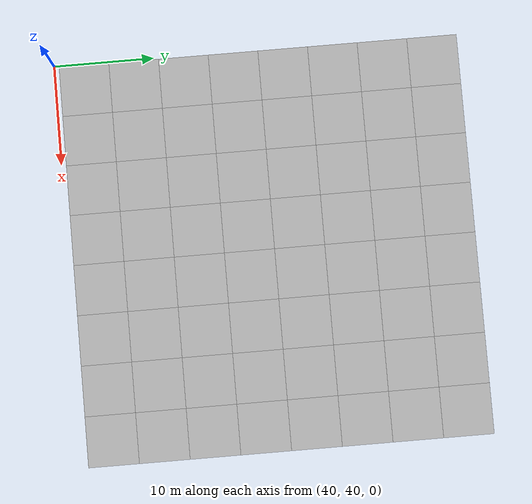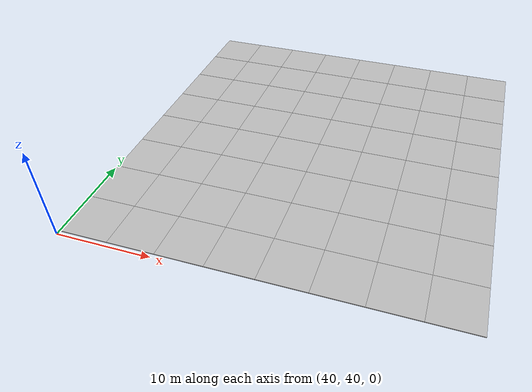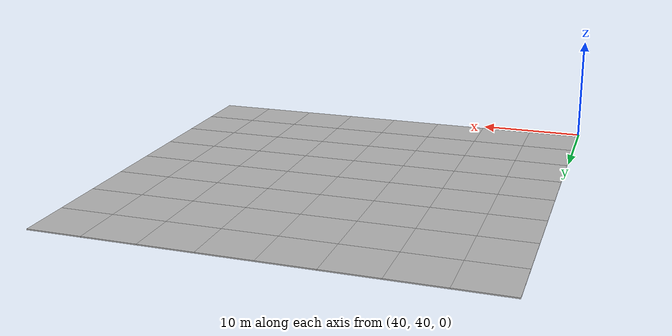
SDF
<sdf version="1.7">
 <world name="default">
  <model name="mud_plane_80x80">
   <model name="mud_plane_40x40">
    <model name="mud_plane_20x20">
     <model name="mud_plane">
      <static>1</static>
      <link name="link">
       <collision name="collision"><geometry><box><size>10 10 0.1</size></box></geometry></collision>
       <visual name="visual_1">
        <pose>-2.5 2.5 -0.05 0 -0 0</pose>
        <cast_shadows>0</cast_shadows>
        <geometry><box><size>5 5 0.1</size></box></geometry>
        <material>
         <script>
          <uri>model://mud_plane/materials/scripts</uri>
          <uri>model://mud_plane/materials/textures</uri>
          <name>vrc/mud</name>
         </script>
        </material>
       </visual>
       <visual name="visual_2">
        <pose>2.5 2.5 -0.05 0 -0 0</pose>
        <cast_shadows>0</cast_shadows>
        <geometry><box><size>5 5 0.1</size></box></geometry>
        <material>
         <script>
          <uri>model://mud_plane/materials/scripts</uri>
          <uri>model://mud_plane/materials/textures</uri>
          <name>vrc/mud</name>
         </script>
        </material>
       </visual>
       <visual name="visual_3">
        <pose>2.5 -2.5 -0.05 0 -0 0</pose>
        <cast_shadows>0</cast_shadows>
        <geometry><box><size>5 5 0.1</size></box></geometry>
        <material>
         <script>
          <uri>model://mud_plane/materials/scripts</uri>
          <uri>model://mud_plane/materials/textures</uri>
          <name>vrc/mud</name>
         </script>
        </material>
       </visual>
       <visual name="visual_4">
        <pose>-2.5 -2.5 -0.05 0 -0 0</pose>
        <cast_shadows>0</cast_shadows>
        <geometry><box><size>5 5 0.1</size></box></geometry>
        <material>
         <script>
          <uri>model://mud_plane/materials/scripts</uri>
          <uri>model://mud_plane/materials/textures</uri>
          <name>vrc/mud</name>
         </script>
        </material>
       </visual>
      </link>
      <pose>-4.99986 -4.99991 0 0 -0 0</pose>
     </model>
     <model name="mud_plane_0">
      <static>1</static>
      <link name="link">
       <collision name="collision"><geometry><box><size>10 10 0.1</size></box></geometry></collision>
       <visual name="visual_1">
        <pose>-2.5 2.5 -0.05 0 -0 0</pose>
        <cast_shadows>0</cast_shadows>
        <geometry><box><size>5 5 0.1</size></box></geometry>
        <material>
         <script>
          <uri>model://mud_plane/materials/scripts</uri>
          <uri>model://mud_plane/materials/textures</uri>
          <name>vrc/mud</name>
         </script>
        </material>
       </visual>
       <visual name="visual_2">
        <pose>2.5 2.5 -0.05 0 -0 0</pose>
        <cast_shadows>0</cast_shadows>
        <geometry><box><size>5 5 0.1</size></box></geometry>
        <material>
         <script>
          <uri>model://mud_plane/materials/scripts</uri>
          <uri>model://mud_plane/materials/textures</uri>
          <name>vrc/mud</name>
         </script>
        </material>
       </visual>
       <visual name="visual_3">
        <pose>2.5 -2.5 -0.05 0 -0 0</pose>
        <cast_shadows>0</cast_shadows>
        <geometry><box><size>5 5 0.1</size></box></geometry>
        <material>
         <script>
          <uri>model://mud_plane/materials/scripts</uri>
          <uri>model://mud_plane/materials/textures</uri>
          <name>vrc/mud</name>
         </script>
        </material>
       </visual>
       <visual name="visual_4">
        <pose>-2.5 -2.5 -0.05 0 -0 0</pose>
        <cast_shadows>0</cast_shadows>
        <geometry><box><size>5 5 0.1</size></box></geometry>
        <material>
         <script>
          <uri>model://mud_plane/materials/scripts</uri>
          <uri>model://mud_plane/materials/textures</uri>
          <name>vrc/mud</name>
         </script>
        </material>
       </visual>
      </link>
      <pose>-4.99946 4.99954 0 0 -0 0</pose>
     </model>
     <model name="mud_plane_1">
      <static>1</static>
      <link name="link">
       <collision name="collision"><geometry><box><size>10 10 0.1</size></box></geometry></collision>
       <visual name="visual_1">
        <pose>-2.5 2.5 -0.05 0 -0 0</pose>
        <cast_shadows>0</cast_shadows>
        <geometry><box><size>5 5 0.1</size></box></geometry>
        <material>
         <script>
          <uri>model://mud_plane/materials/scripts</uri>
          <uri>model://mud_plane/materials/textures</uri>
          <name>vrc/mud</name>
         </script>
        </material>
       </visual>
       <visual name="visual_2">
        <pose>2.5 2.5 -0.05 0 -0 0</pose>
        <cast_shadows>0</cast_shadows>
        <geometry><box><size>5 5 0.1</size></box></geometry>
        <material>
         <script>
          <uri>model://mud_plane/materials/scripts</uri>
          <uri>model://mud_plane/materials/textures</uri>
          <name>vrc/mud</name>
         </script>
        </material>
       </visual>
       <visual name="visual_3">
        <pose>2.5 -2.5 -0.05 0 -0 0</pose>
        <cast_shadows>0</cast_shadows>
        <geometry><box><size>5 5 0.1</size></box></geometry>
        <material>
         <script>
          <uri>model://mud_plane/materials/scripts</uri>
          <uri>model://mud_plane/materials/textures</uri>
          <name>vrc/mud</name>
         </script>
        </material>
       </visual>
       <visual name="visual_4">
        <pose>-2.5 -2.5 -0.05 0 -0 0</pose>
        <cast_shadows>0</cast_shadows>
        <geometry><box><size>5 5 0.1</size></box></geometry>
        <material>
         <script>
          <uri>model://mud_plane/materials/scripts</uri>
          <uri>model://mud_plane/materials/textures</uri>
          <name>vrc/mud</name>
         </script>
        </material>
       </visual>
      </link>
      <pose>4.99964 -4.99949 0 0 -0 0</pose>
     </model>
     <model name="mud_plane_2">
      <static>1</static>
      <link name="link">
       <collision name="collision"><geometry><box><size>10 10 0.1</size></box></geometry></collision>
       <visual name="visual_1">
        <pose>-2.5 2.5 -0.05 0 -0 0</pose>
        <cast_shadows>0</cast_shadows>
        <geometry><box><size>5 5 0.1</size></box></geometry>
        <material>
         <script>
          <uri>model://mud_plane/materials/scripts</uri>
          <uri>model://mud_plane/materials/textures</uri>
          <name>vrc/mud</name>
         </script>
        </material>
       </visual>
       <visual name="visual_2">
        <pose>2.5 2.5 -0.05 0 -0 0</pose>
        <cast_shadows>0</cast_shadows>
        <geometry><box><size>5 5 0.1</size></box></geometry>
        <material>
         <script>
          <uri>model://mud_plane/materials/scripts</uri>
          <uri>model://mud_plane/materials/textures</uri>
          <name>vrc/mud</name>
         </script>
        </material>
       </visual>
       <visual name="visual_3">
        <pose>2.5 -2.5 -0.05 0 -0 0</pose>
        <cast_shadows>0</cast_shadows>
        <geometry><box><size>5 5 0.1</size></box></geometry>
        <material>
         <script>
          <uri>model://mud_plane/materials/scripts</uri>
          <uri>model://mud_plane/materials/textures</uri>
          <name>vrc/mud</name>
         </script>
        </material>
       </visual>
       <visual name="visual_4">
        <pose>-2.5 -2.5 -0.05 0 -0 0</pose>
        <cast_shadows>0</cast_shadows>
        <geometry><box><size>5 5 0.1</size></box></geometry>
        <material>
         <script>
          <uri>model://mud_plane/materials/scripts</uri>
          <uri>model://mud_plane/materials/textures</uri>
          <name>vrc/mud</name>
         </script>
        </material>
       </visual>
      </link>
      <pose>4.99967 4.99986 0 0 -0 0</pose>
     </model>
     <static>0</static>
     <pose>-9.99895 9.99843 0 0 -0 0</pose>
    </model>
    <model name="mud_plane_20x20_0">
     <model name="mud_plane">
      <static>1</static>
      <link name="link">
       <collision name="collision"><geometry><box><size>10 10 0.1</size></box></geometry></collision>
       <visual name="visual_1">
        <pose>-2.5 2.5 -0.05 0 -0 0</pose>
        <cast_shadows>0</cast_shadows>
        <geometry><box><size>5 5 0.1</size></box></geometry>
        <material>
         <script>
          <uri>model://mud_plane/materials/scripts</uri>
          <uri>model://mud_plane/materials/textures</uri>
          <name>vrc/mud</name>
         </script>
        </material>
       </visual>
       <visual name="visual_2">
        <pose>2.5 2.5 -0.05 0 -0 0</pose>
        <cast_shadows>0</cast_shadows>
        <geometry><box><size>5 5 0.1</size></box></geometry>
        <material>
         <script>
          <uri>model://mud_plane/materials/scripts</uri>
          <uri>model://mud_plane/materials/textures</uri>
          <name>vrc/mud</name>
         </script>
        </material>
       </visual>
       <visual name="visual_3">
        <pose>2.5 -2.5 -0.05 0 -0 0</pose>
        <cast_shadows>0</cast_shadows>
        <geometry><box><size>5 5 0.1</size></box></geometry>
        <material>
         <script>
          <uri>model://mud_plane/materials/scripts</uri>
          <uri>model://mud_plane/materials/textures</uri>
          <name>vrc/mud</name>
         </script>
        </material>
       </visual>
       <visual name="visual_4">
        <pose>-2.5 -2.5 -0.05 0 -0 0</pose>
        <cast_shadows>0</cast_shadows>
        <geometry><box><size>5 5 0.1</size></box></geometry>
        <material>
         <script>
          <uri>model://mud_plane/materials/scripts</uri>
          <uri>model://mud_plane/materials/textures</uri>
          <name>vrc/mud</name>
         </script>
        </material>
       </visual>
      </link>
      <pose>-4.99986 -4.99991 0 0 -0 0</pose>
     </model>
     <model name="mud_plane_0">
      <static>1</static>
      <link name="link">
       <collision name="collision"><geometry><box><size>10 10 0.1</size></box></geometry></collision>
       <visual name="visual_1">
        <pose>-2.5 2.5 -0.05 0 -0 0</pose>
        <cast_shadows>0</cast_shadows>
        <geometry><box><size>5 5 0.1</size></box></geometry>
        <material>
         <script>
          <uri>model://mud_plane/materials/scripts</uri>
          <uri>model://mud_plane/materials/textures</uri>
          <name>vrc/mud</name>
         </script>
        </material>
       </visual>
       <visual name="visual_2">
        <pose>2.5 2.5 -0.05 0 -0 0</pose>
        <cast_shadows>0</cast_shadows>
        <geometry><box><size>5 5 0.1</size></box></geometry>
        <material>
         <script>
          <uri>model://mud_plane/materials/scripts</uri>
          <uri>model://mud_plane/materials/textures</uri>
          <name>vrc/mud</name>
         </script>
        </material>
       </visual>
       <visual name="visual_3">
        <pose>2.5 -2.5 -0.05 0 -0 0</pose>
        <cast_shadows>0</cast_shadows>
        <geometry><box><size>5 5 0.1</size></box></geometry>
        <material>
         <script>
          <uri>model://mud_plane/materials/scripts</uri>
          <uri>model://mud_plane/materials/textures</uri>
          <name>vrc/mud</name>
         </script>
        </material>
       </visual>
       <visual name="visual_4">
        <pose>-2.5 -2.5 -0.05 0 -0 0</pose>
        <cast_shadows>0</cast_shadows>
        <geometry><box><size>5 5 0.1</size></box></geometry>
        <material>
         <script>
          <uri>model://mud_plane/materials/scripts</uri>
          <uri>model://mud_plane/materials/textures</uri>
          <name>vrc/mud</name>
         </script>
        </material>
       </visual>
      </link>
      <pose>-4.99946 4.99954 0 0 -0 0</pose>
     </model>
     <model name="mud_plane_1">
      <static>1</static>
      <link name="link">
       <collision name="collision"><geometry><box><size>10 10 0.1</size></box></geometry></collision>
       <visual name="visual_1">
        <pose>-2.5 2.5 -0.05 0 -0 0</pose>
        <cast_shadows>0</cast_shadows>
        <geometry><box><size>5 5 0.1</size></box></geometry>
        <material>
         <script>
          <uri>model://mud_plane/materials/scripts</uri>
          <uri>model://mud_plane/materials/textures</uri>
          <name>vrc/mud</name>
         </script>
        </material>
       </visual>
       <visual name="visual_2">
        <pose>2.5 2.5 -0.05 0 -0 0</pose>
        <cast_shadows>0</cast_shadows>
        <geometry><box><size>5 5 0.1</size></box></geometry>
        <material>
         <script>
          <uri>model://mud_plane/materials/scripts</uri>
          <uri>model://mud_plane/materials/textures</uri>
          <name>vrc/mud</name>
         </script>
        </material>
       </visual>
       <visual name="visual_3">
        <pose>2.5 -2.5 -0.05 0 -0 0</pose>
        <cast_shadows>0</cast_shadows>
        <geometry><box><size>5 5 0.1</size></box></geometry>
        <material>
         <script>
          <uri>model://mud_plane/materials/scripts</uri>
          <uri>model://mud_plane/materials/textures</uri>
          <name>vrc/mud</name>
         </script>
        </material>
       </visual>
       <visual name="visual_4">
        <pose>-2.5 -2.5 -0.05 0 -0 0</pose>
        <cast_shadows>0</cast_shadows>
        <geometry><box><size>5 5 0.1</size></box></geometry>
        <material>
         <script>
          <uri>model://mud_plane/materials/scripts</uri>
          <uri>model://mud_plane/materials/textures</uri>
          <name>vrc/mud</name>
         </script>
        </material>
       </visual>
      </link>
      <pose>4.99964 -4.99949 0 0 -0 0</pose>
     </model>
     <model name="mud_plane_2">
      <static>1</static>
      <link name="link">
       <collision name="collision"><geometry><box><size>10 10 0.1</size></box></geometry></collision>
       <visual name="visual_1">
        <pose>-2.5 2.5 -0.05 0 -0 0</pose>
        <cast_shadows>0</cast_shadows>
        <geometry><box><size>5 5 0.1</size></box></geometry>
        <material>
         <script>
          <uri>model://mud_plane/materials/scripts</uri>
          <uri>model://mud_plane/materials/textures</uri>
          <name>vrc/mud</name>
         </script>
        </material>
       </visual>
       <visual name="visual_2">
        <pose>2.5 2.5 -0.05 0 -0 0</pose>
        <cast_shadows>0</cast_shadows>
        <geometry><box><size>5 5 0.1</size></box></geometry>
        <material>
         <script>
          <uri>model://mud_plane/materials/scripts</uri>
          <uri>model://mud_plane/materials/textures</uri>
          <name>vrc/mud</name>
         </script>
        </material>
       </visual>
       <visual name="visual_3">
        <pose>2.5 -2.5 -0.05 0 -0 0</pose>
        <cast_shadows>0</cast_shadows>
        <geometry><box><size>5 5 0.1</size></box></geometry>
        <material>
         <script>
          <uri>model://mud_plane/materials/scripts</uri>
          <uri>model://mud_plane/materials/textures</uri>
          <name>vrc/mud</name>
         </script>
        </material>
       </visual>
       <visual name="visual_4">
        <pose>-2.5 -2.5 -0.05 0 -0 0</pose>
        <cast_shadows>0</cast_shadows>
        <geometry><box><size>5 5 0.1</size></box></geometry>
        <material>
         <script>
          <uri>model://mud_plane/materials/scripts</uri>
          <uri>model://mud_plane/materials/textures</uri>
          <name>vrc/mud</name>
         </script>
        </material>
       </visual>
      </link>
      <pose>4.99967 4.99986 0 0 -0 0</pose>
     </model>
     <static>0</static>
     <pose>9.99933 9.9997 0 0 -0 0</pose>
    </model>
    <model name="mud_plane_20x20_1">
     <model name="mud_plane">
      <static>1</static>
      <link name="link">
       <collision name="collision"><geometry><box><size>10 10 0.1</size></box></geometry></collision>
       <visual name="visual_1">
        <pose>-2.5 2.5 -0.05 0 -0 0</pose>
        <cast_shadows>0</cast_shadows>
        <geometry><box><size>5 5 0.1</size></box></geometry>
        <material>
         <script>
          <uri>model://mud_plane/materials/scripts</uri>
          <uri>model://mud_plane/materials/textures</uri>
          <name>vrc/mud</name>
         </script>
        </material>
       </visual>
       <visual name="visual_2">
        <pose>2.5 2.5 -0.05 0 -0 0</pose>
        <cast_shadows>0</cast_shadows>
        <geometry><box><size>5 5 0.1</size></box></geometry>
        <material>
         <script>
          <uri>model://mud_plane/materials/scripts</uri>
          <uri>model://mud_plane/materials/textures</uri>
          <name>vrc/mud</name>
         </script>
        </material>
       </visual>
       <visual name="visual_3">
        <pose>2.5 -2.5 -0.05 0 -0 0</pose>
        <cast_shadows>0</cast_shadows>
        <geometry><box><size>5 5 0.1</size></box></geometry>
        <material>
         <script>
          <uri>model://mud_plane/materials/scripts</uri>
          <uri>model://mud_plane/materials/textures</uri>
          <name>vrc/mud</name>
         </script>
        </material>
       </visual>
       <visual name="visual_4">
        <pose>-2.5 -2.5 -0.05 0 -0 0</pose>
        <cast_shadows>0</cast_shadows>
        <geometry><box><size>5 5 0.1</size></box></geometry>
        <material>
         <script>
          <uri>model://mud_plane/materials/scripts</uri>
          <uri>model://mud_plane/materials/textures</uri>
          <name>vrc/mud</name>
         </script>
        </material>
       </visual>
      </link>
      <pose>-4.99986 -4.99991 0 0 -0 0</pose>
     </model>
     <model name="mud_plane_0">
      <static>1</static>
      <link name="link">
       <collision name="collision"><geometry><box><size>10 10 0.1</size></box></geometry></collision>
       <visual name="visual_1">
        <pose>-2.5 2.5 -0.05 0 -0 0</pose>
        <cast_shadows>0</cast_shadows>
        <geometry><box><size>5 5 0.1</size></box></geometry>
        <material>
         <script>
          <uri>model://mud_plane/materials/scripts</uri>
          <uri>model://mud_plane/materials/textures</uri>
          <name>vrc/mud</name>
         </script>
        </material>
       </visual>
       <visual name="visual_2">
        <pose>2.5 2.5 -0.05 0 -0 0</pose>
        <cast_shadows>0</cast_shadows>
        <geometry><box><size>5 5 0.1</size></box></geometry>
        <material>
         <script>
          <uri>model://mud_plane/materials/scripts</uri>
          <uri>model://mud_plane/materials/textures</uri>
          <name>vrc/mud</name>
         </script>
        </material>
       </visual>
       <visual name="visual_3">
        <pose>2.5 -2.5 -0.05 0 -0 0</pose>
        <cast_shadows>0</cast_shadows>
        <geometry><box><size>5 5 0.1</size></box></geometry>
        <material>
         <script>
          <uri>model://mud_plane/materials/scripts</uri>
          <uri>model://mud_plane/materials/textures</uri>
          <name>vrc/mud</name>
         </script>
        </material>
       </visual>
       <visual name="visual_4">
        <pose>-2.5 -2.5 -0.05 0 -0 0</pose>
        <cast_shadows>0</cast_shadows>
        <geometry><box><size>5 5 0.1</size></box></geometry>
        <material>
         <script>
          <uri>model://mud_plane/materials/scripts</uri>
          <uri>model://mud_plane/materials/textures</uri>
          <name>vrc/mud</name>
         </script>
        </material>
       </visual>
      </link>
      <pose>-4.99946 4.99954 0 0 -0 0</pose>
     </model>
     <model name="mud_plane_1">
      <static>1</static>
      <link name="link">
       <collision name="collision"><geometry><box><size>10 10 0.1</size></box></geometry></collision>
       <visual name="visual_1">
        <pose>-2.5 2.5 -0.05 0 -0 0</pose>
        <cast_shadows>0</cast_shadows>
        <geometry><box><size>5 5 0.1</size></box></geometry>
        <material>
         <script>
          <uri>model://mud_plane/materials/scripts</uri>
          <uri>model://mud_plane/materials/textures</uri>
          <name>vrc/mud</name>
         </script>
        </material>
       </visual>
       <visual name="visual_2">
        <pose>2.5 2.5 -0.05 0 -0 0</pose>
        <cast_shadows>0</cast_shadows>
        <geometry><box><size>5 5 0.1</size></box></geometry>
        <material>
         <script>
          <uri>model://mud_plane/materials/scripts</uri>
          <uri>model://mud_plane/materials/textures</uri>
          <name>vrc/mud</name>
         </script>
        </material>
       </visual>
       <visual name="visual_3">
        <pose>2.5 -2.5 -0.05 0 -0 0</pose>
        <cast_shadows>0</cast_shadows>
        <geometry><box><size>5 5 0.1</size></box></geometry>
        <material>
         <script>
          <uri>model://mud_plane/materials/scripts</uri>
          <uri>model://mud_plane/materials/textures</uri>
          <name>vrc/mud</name>
         </script>
        </material>
       </visual>
       <visual name="visual_4">
        <pose>-2.5 -2.5 -0.05 0 -0 0</pose>
        <cast_shadows>0</cast_shadows>
        <geometry><box><size>5 5 0.1</size></box></geometry>
        <material>
         <script>
          <uri>model://mud_plane/materials/scripts</uri>
          <uri>model://mud_plane/materials/textures</uri>
          <name>vrc/mud</name>
         </script>
        </material>
       </visual>
      </link>
      <pose>4.99964 -4.99949 0 0 -0 0</pose>
     </model>
     <model name="mud_plane_2">
      <static>1</static>
      <link name="link">
       <collision name="collision"><geometry><box><size>10 10 0.1</size></box></geometry></collision>
       <visual name="visual_1">
        <pose>-2.5 2.5 -0.05 0 -0 0</pose>
        <cast_shadows>0</cast_shadows>
        <geometry><box><size>5 5 0.1</size></box></geometry>
        <material>
         <script>
          <uri>model://mud_plane/materials/scripts</uri>
          <uri>model://mud_plane/materials/textures</uri>
          <name>vrc/mud</name>
         </script>
        </material>
       </visual>
       <visual name="visual_2">
        <pose>2.5 2.5 -0.05 0 -0 0</pose>
        <cast_shadows>0</cast_shadows>
        <geometry><box><size>5 5 0.1</size></box></geometry>
        <material>
         <script>
          <uri>model://mud_plane/materials/scripts</uri>
          <uri>model://mud_plane/materials/textures</uri>
          <name>vrc/mud</name>
         </script>
        </material>
       </visual>
       <visual name="visual_3">
        <pose>2.5 -2.5 -0.05 0 -0 0</pose>
        <cast_shadows>0</cast_shadows>
        <geometry><box><size>5 5 0.1</size></box></geometry>
        <material>
         <script>
          <uri>model://mud_plane/materials/scripts</uri>
          <uri>model://mud_plane/materials/textures</uri>
          <name>vrc/mud</name>
         </script>
        </material>
       </visual>
       <visual name="visual_4">
        <pose>-2.5 -2.5 -0.05 0 -0 0</pose>
        <cast_shadows>0</cast_shadows>
        <geometry><box><size>5 5 0.1</size></box></geometry>
        <material>
         <script>
          <uri>model://mud_plane/materials/scripts</uri>
          <uri>model://mud_plane/materials/textures</uri>
          <name>vrc/mud</name>
         </script>
        </material>
       </visual>
      </link>
      <pose>4.99967 4.99986 0 0 -0 0</pose>
     </model>
     <static>0</static>
     <pose>9.9993 -9.99877 0 0 -0 0</pose>
    </model>
    <model name="mud_plane_20x20_2">
     <model name="mud_plane">
      <static>1</static>
      <link name="link">
       <collision name="collision"><geometry><box><size>10 10 0.1</size></box></geometry></collision>
       <visual name="visual_1">
        <pose>-2.5 2.5 -0.05 0 -0 0</pose>
        <cast_shadows>0</cast_shadows>
        <geometry><box><size>5 5 0.1</size></box></geometry>
        <material>
         <script>
          <uri>model://mud_plane/materials/scripts</uri>
          <uri>model://mud_plane/materials/textures</uri>
          <name>vrc/mud</name>
         </script>
        </material>
       </visual>
       <visual name="visual_2">
        <pose>2.5 2.5 -0.05 0 -0 0</pose>
        <cast_shadows>0</cast_shadows>
        <geometry><box><size>5 5 0.1</size></box></geometry>
        <material>
         <script>
          <uri>model://mud_plane/materials/scripts</uri>
          <uri>model://mud_plane/materials/textures</uri>
          <name>vrc/mud</name>
         </script>
        </material>
       </visual>
       <visual name="visual_3">
        <pose>2.5 -2.5 -0.05 0 -0 0</pose>
        <cast_shadows>0</cast_shadows>
        <geometry><box><size>5 5 0.1</size></box></geometry>
        <material>
         <script>
          <uri>model://mud_plane/materials/scripts</uri>
          <uri>model://mud_plane/materials/textures</uri>
          <name>vrc/mud</name>
         </script>
        </material>
       </visual>
       <visual name="visual_4">
        <pose>-2.5 -2.5 -0.05 0 -0 0</pose>
        <cast_shadows>0</cast_shadows>
        <geometry><box><size>5 5 0.1</size></box></geometry>
        <material>
         <script>
          <uri>model://mud_plane/materials/scripts</uri>
          <uri>model://mud_plane/materials/textures</uri>
          <name>vrc/mud</name>
         </script>
        </material>
       </visual>
      </link>
      <pose>-4.99986 -4.99991 0 0 -0 0</pose>
     </model>
     <model name="mud_plane_0">
      <static>1</static>
      <link name="link">
       <collision name="collision"><geometry><box><size>10 10 0.1</size></box></geometry></collision>
       <visual name="visual_1">
        <pose>-2.5 2.5 -0.05 0 -0 0</pose>
        <cast_shadows>0</cast_shadows>
        <geometry><box><size>5 5 0.1</size></box></geometry>
        <material>
         <script>
          <uri>model://mud_plane/materials/scripts</uri>
          <uri>model://mud_plane/materials/textures</uri>
          <name>vrc/mud</name>
         </script>
        </material>
       </visual>
       <visual name="visual_2">
        <pose>2.5 2.5 -0.05 0 -0 0</pose>
        <cast_shadows>0</cast_shadows>
        <geometry><box><size>5 5 0.1</size></box></geometry>
        <material>
         <script>
          <uri>model://mud_plane/materials/scripts</uri>
          <uri>model://mud_plane/materials/textures</uri>
          <name>vrc/mud</name>
         </script>
        </material>
       </visual>
       <visual name="visual_3">
        <pose>2.5 -2.5 -0.05 0 -0 0</pose>
        <cast_shadows>0</cast_shadows>
        <geometry><box><size>5 5 0.1</size></box></geometry>
        <material>
         <script>
          <uri>model://mud_plane/materials/scripts</uri>
          <uri>model://mud_plane/materials/textures</uri>
          <name>vrc/mud</name>
         </script>
        </material>
       </visual>
       <visual name="visual_4">
        <pose>-2.5 -2.5 -0.05 0 -0 0</pose>
        <cast_shadows>0</cast_shadows>
        <geometry><box><size>5 5 0.1</size></box></geometry>
        <material>
         <script>
          <uri>model://mud_plane/materials/scripts</uri>
          <uri>model://mud_plane/materials/textures</uri>
          <name>vrc/mud</name>
         </script>
        </material>
       </visual>
      </link>
      <pose>-4.99946 4.99954 0 0 -0 0</pose>
     </model>
     <model name="mud_plane_1">
      <static>1</static>
      <link name="link">
       <collision name="collision"><geometry><box><size>10 10 0.1</size></box></geometry></collision>
       <visual name="visual_1">
        <pose>-2.5 2.5 -0.05 0 -0 0</pose>
        <cast_shadows>0</cast_shadows>
        <geometry><box><size>5 5 0.1</size></box></geometry>
        <material>
         <script>
          <uri>model://mud_plane/materials/scripts</uri>
          <uri>model://mud_plane/materials/textures</uri>
          <name>vrc/mud</name>
         </script>
        </material>
       </visual>
       <visual name="visual_2">
        <pose>2.5 2.5 -0.05 0 -0 0</pose>
        <cast_shadows>0</cast_shadows>
        <geometry><box><size>5 5 0.1</size></box></geometry>
        <material>
         <script>
          <uri>model://mud_plane/materials/scripts</uri>
          <uri>model://mud_plane/materials/textures</uri>
          <name>vrc/mud</name>
         </script>
        </material>
       </visual>
       <visual name="visual_3">
        <pose>2.5 -2.5 -0.05 0 -0 0</pose>
        <cast_shadows>0</cast_shadows>
        <geometry><box><size>5 5 0.1</size></box></geometry>
        <material>
         <script>
          <uri>model://mud_plane/materials/scripts</uri>
          <uri>model://mud_plane/materials/textures</uri>
          <name>vrc/mud</name>
         </script>
        </material>
       </visual>
       <visual name="visual_4">
        <pose>-2.5 -2.5 -0.05 0 -0 0</pose>
        <cast_shadows>0</cast_shadows>
        <geometry><box><size>5 5 0.1</size></box></geometry>
        <material>
         <script>
          <uri>model://mud_plane/materials/scripts</uri>
          <uri>model://mud_plane/materials/textures</uri>
          <name>vrc/mud</name>
         </script>
        </material>
       </visual>
      </link>
      <pose>4.99964 -4.99949 0 0 -0 0</pose>
     </model>
     <model name="mud_plane_2">
      <static>1</static>
      <link name="link">
       <collision name="collision"><geometry><box><size>10 10 0.1</size></box></geometry></collision>
       <visual name="visual_1">
        <pose>-2.5 2.5 -0.05 0 -0 0</pose>
        <cast_shadows>0</cast_shadows>
        <geometry><box><size>5 5 0.1</size></box></geometry>
        <material>
         <script>
          <uri>model://mud_plane/materials/scripts</uri>
          <uri>model://mud_plane/materials/textures</uri>
          <name>vrc/mud</name>
         </script>
        </material>
       </visual>
       <visual name="visual_2">
        <pose>2.5 2.5 -0.05 0 -0 0</pose>
        <cast_shadows>0</cast_shadows>
        <geometry><box><size>5 5 0.1</size></box></geometry>
        <material>
         <script>
          <uri>model://mud_plane/materials/scripts</uri>
          <uri>model://mud_plane/materials/textures</uri>
          <name>vrc/mud</name>
         </script>
        </material>
       </visual>
       <visual name="visual_3">
        <pose>2.5 -2.5 -0.05 0 -0 0</pose>
        <cast_shadows>0</cast_shadows>
        <geometry><box><size>5 5 0.1</size></box></geometry>
        <material>
         <script>
          <uri>model://mud_plane/materials/scripts</uri>
          <uri>model://mud_plane/materials/textures</uri>
          <name>vrc/mud</name>
         </script>
        </material>
       </visual>
       <visual name="visual_4">
        <pose>-2.5 -2.5 -0.05 0 -0 0</pose>
        <cast_shadows>0</cast_shadows>
        <geometry><box><size>5 5 0.1</size></box></geometry>
        <material>
         <script>
          <uri>model://mud_plane/materials/scripts</uri>
          <uri>model://mud_plane/materials/textures</uri>
          <name>vrc/mud</name>
         </script>
        </material>
       </visual>
      </link>
      <pose>4.99967 4.99986 0 0 -0 0</pose>
     </model>
     <static>0</static>
     <pose>-9.99969 -9.99935 0 0 -0 0</pose>
    </model>
    <static>0</static>
    <pose>19.9986 19.9995 0 0 -0 0</pose>
   </model>
   <static>0</static>
   <pose>40.1011 40.4629 0 0 -0 0</pose>
  </model>
 </world>
</sdf>
